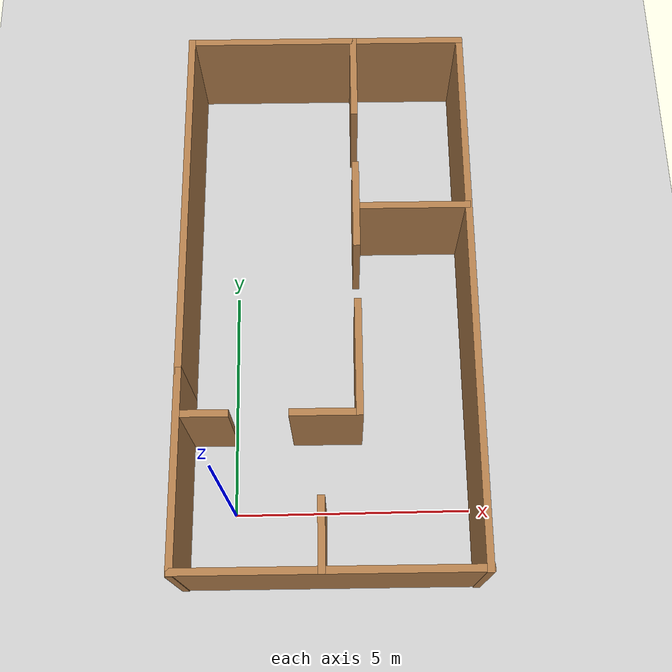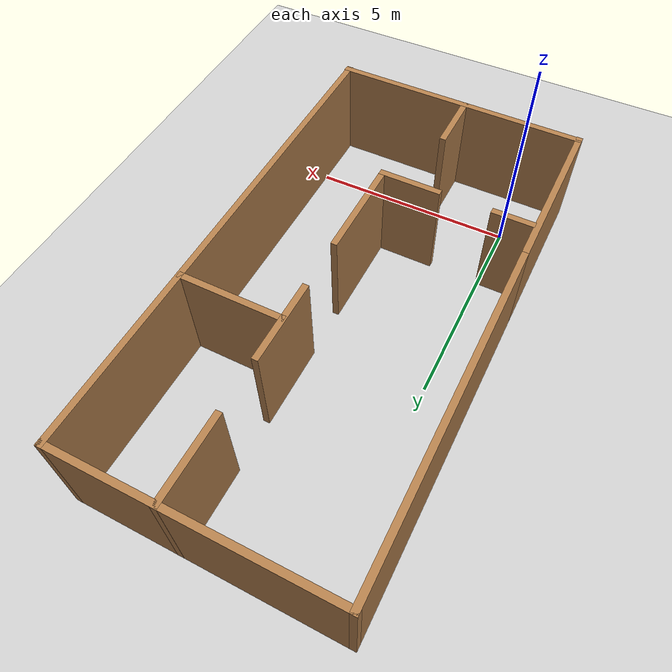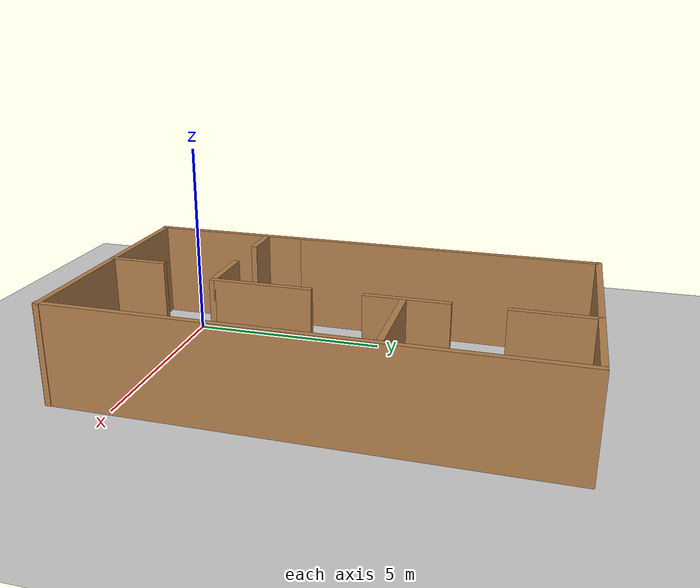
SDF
<sdf version="1.6">
 <world name="default">
  <light name="sun" type="directional">
   <pose>0 0 10 0 -0 0</pose>
   <diffuse>0.8 0.8 0.8 1</diffuse>
   <specular>0.2 0.2 0.2 1</specular>
   <attenuation>
    <range>1000</range>
    <constant>0.9</constant>
    <linear>0.01</linear>
    <quadratic>0.001</quadratic>
   </attenuation>
   <direction>-0.5 0.1 -0.9</direction>
  </light>
  <model name="ground_plane">
   <static>1</static>
   <link name="link">
    <collision name="collision">
     <geometry><plane><normal>0 0 1</normal><size>100 100</size></plane></geometry>
     <surface><friction><ode><mu>100</mu><mu2>50</mu2></ode></friction></surface>
    </collision>
    <visual name="visual">
     <cast_shadows>0</cast_shadows>
     <geometry><plane><normal>0 0 1</normal><size>100 100</size></plane></geometry>
     <material>
      <script><uri>file://media/materials/scripts/gazebo.material</uri><name>Gazebo/Grey</name></script>
     </material>
    </visual>
   </link>
  </model>
  <gravity>0 0 -9.8</gravity>
  <magnetic_field>6e-06 2.3e-05 -4.2e-05</magnetic_field>
  <atmosphere type="adiabatic"/>
  <physics name="default_physics" default="0" type="ode">
   <max_step_size>0.001</max_step_size>
   <real_time_factor>1</real_time_factor>
   <real_time_update_rate>1000</real_time_update_rate>
  </physics>
  <scene><ambient>0.4 0.4 0.4 1</ambient><background>0.7 0.7 0.7 1</background><shadows>1</shadows></scene>
  <audio><device>default</device></audio>
  <spherical_coordinates>
   <surface_model>EARTH_WGS84</surface_model>
   <latitude_deg>0</latitude_deg>
   <longitude_deg>0</longitude_deg>
   <elevation>0</elevation>
   <heading_deg>0</heading_deg>
  </spherical_coordinates>
  <model name="CASA_lab">
   <pose>2.07983 4.42493 0 0 0 -1.58</pose>
   <link name="Wall_0">
    <collision name="Wall_0_Collision">
     <geometry><box><size>8 0.15 2.5</size></box></geometry>
     <pose>0 0 1.25 0 -0 0</pose>
    </collision>
    <visual name="Wall_0_Visual">
     <pose>0 0 1.25 0 -0 0</pose>
     <geometry><box><size>8 0.15 2.5</size></box></geometry>
     <material>
      <script><uri>file://media/materials/scripts/gazebo.material</uri><name>Gazebo/Wood</name></script>
      <ambient>1 1 1 1</ambient>
     </material>
     <meta><layer>0</layer></meta>
    </visual>
    <pose>-1.99791 -3.05756 0 0 -0 0</pose>
   </link>
   <link name="Wall_12">
    <collision name="Wall_12_Collision">
     <geometry><box><size>2 0.15 2.5</size></box></geometry>
     <pose>0 0 1.25 0 -0 0</pose>
    </collision>
    <visual name="Wall_12_Visual">
     <pose>0 0 1.25 0 -0 0</pose>
     <geometry><box><size>2 0.15 2.5</size></box></geometry>
     <material>
      <script><uri>file://media/materials/scripts/gazebo.material</uri><name>Gazebo/Wood</name></script>
      <ambient>1 1 1 1</ambient>
     </material>
     <meta><layer>0</layer></meta>
    </visual>
    <pose>-1.79926 0.618124 0 0 -0 0</pose>
   </link>
   <link name="Wall_14">
    <collision name="Wall_14_Collision">
     <geometry><box><size>2.5 0.15 2.5</size></box></geometry>
     <pose>0 0 1.25 0 -0 0</pose>
    </collision>
    <visual name="Wall_14_Visual">
     <pose>0 0 1.25 0 -0 0</pose>
     <geometry><box><size>2.5 0.15 2.5</size></box></geometry>
     <material>
      <script><uri>file://media/materials/scripts/gazebo.material</uri><name>Gazebo/Wood</name></script>
      <ambient>1 1 1 1</ambient>
     </material>
     <meta><layer>0</layer></meta>
    </visual>
    <pose>1.65074 0.618124 0 0 -0 0</pose>
   </link>
   <link name="Wall_15">
    <collision name="Wall_15_Collision">
     <geometry><box><size>1.5 0.15 2.5</size></box></geometry>
     <pose>0 0 1.25 0 -0 0</pose>
    </collision>
    <visual name="Wall_15_Visual">
     <pose>0 0 1.25 0 -0 0</pose>
     <geometry><box><size>1.5 0.15 2.5</size></box></geometry>
     <material>
      <script><uri>file://media/materials/scripts/gazebo.material</uri><name>Gazebo/Wood</name></script>
      <ambient>1 1 1 1</ambient>
     </material>
     <meta><layer>0</layer></meta>
    </visual>
    <pose>2.82574 -0.056876 0 0 -0 -1.5708</pose>
   </link>
   <link name="Wall_17">
    <collision name="Wall_17_Collision">
     <geometry><box><size>1 0.15 2.5</size></box></geometry>
     <pose>0 0 1.25 0 -0 0</pose>
    </collision>
    <visual name="Wall_17_Visual">
     <pose>0 0 1.25 0 -0 0</pose>
     <geometry><box><size>1 0.15 2.5</size></box></geometry>
     <material>
      <script><uri>file://media/materials/scripts/gazebo.material</uri><name>Gazebo/Wood</name></script>
      <ambient>1 1 1 1</ambient>
     </material>
     <meta><layer>0</layer></meta>
    </visual>
    <pose>2.82574 -2.50688 0 0 -0 -1.5708</pose>
   </link>
   <link name="Wall_19">
    <collision name="Wall_19_Collision">
     <geometry><box><size>2.5 0.15 2.5</size></box></geometry>
     <pose>0 0 1.25 0 -0 0</pose>
    </collision>
    <visual name="Wall_19_Visual">
     <pose>0 0 1.25 0 -0 0</pose>
     <geometry><box><size>2.5 0.15 2.5</size></box></geometry>
     <material>
      <script><uri>file://media/materials/scripts/gazebo.material</uri><name>Gazebo/Wood</name></script>
      <ambient>1 1 1 1</ambient>
     </material>
     <meta><layer>0</layer></meta>
    </visual>
    <pose>-1.73522 1.83063 0 0 -0 1.5708</pose>
   </link>
   <link name="Wall_21">
    <collision name="Wall_21_Collision">
     <geometry><box><size>1.5 0.15 2.5</size></box></geometry>
     <pose>0 0 1.25 0 -0 0</pose>
    </collision>
    <visual name="Wall_21_Visual">
     <pose>0 0 1.25 0 -0 0</pose>
     <geometry><box><size>1.5 0.15 2.5</size></box></geometry>
     <material>
      <script><uri>file://media/materials/scripts/gazebo.material</uri><name>Gazebo/Wood</name></script>
      <ambient>1 1 1 1</ambient>
     </material>
     <meta><layer>0</layer></meta>
    </visual>
    <pose>5.23091 -0.164528 0 0 -0 3.14159</pose>
   </link>
   <link name="Wall_4">
    <collision name="Wall_4_Collision">
     <geometry><box><size>6.25 0.15 2.5</size></box></geometry>
     <pose>0 0 1.25 0 -0 0</pose>
    </collision>
    <visual name="Wall_4_Visual">
     <pose>0 0 1.25 0 -0 0</pose>
     <geometry><box><size>6.25 0.15 2.5</size></box></geometry>
     <material>
      <script><uri>file://media/materials/scripts/gazebo.material</uri><name>Gazebo/Wood</name></script>
      <ambient>1 1 1 1</ambient>
     </material>
     <meta><layer>0</layer></meta>
    </visual>
    <pose>-5.92291 -0.007562 0 0 -0 1.5708</pose>
   </link>
   <link name="Wall_5">
    <collision name="Wall_5_Collision">
     <geometry><box><size>11.9972 0.15 2.5</size></box></geometry>
     <pose>0 0 1.25 0 -0 0</pose>
    </collision>
    <visual name="Wall_5_Visual">
     <pose>0 0 1.25 0 -0 0</pose>
     <geometry><box><size>11.9972 0.15 2.5</size></box></geometry>
     <material>
      <script><uri>file://media/materials/scripts/gazebo.material</uri><name>Gazebo/Wood</name></script>
      <ambient>1 1 1 1</ambient>
     </material>
     <meta><layer>0</layer></meta>
    </visual>
    <pose>0.000676 3.04244 0 0 -0 0</pose>
   </link>
   <link name="Wall_6">
    <collision name="Wall_6_Collision">
     <geometry><box><size>6.25 0.15 2.5</size></box></geometry>
     <pose>0 0 1.25 0 -0 0</pose>
    </collision>
    <visual name="Wall_6_Visual">
     <pose>0 0 1.25 0 -0 0</pose>
     <geometry><box><size>6.25 0.15 2.5</size></box></geometry>
     <material>
      <script><uri>file://media/materials/scripts/gazebo.material</uri><name>Gazebo/Wood</name></script>
      <ambient>1 1 1 1</ambient>
     </material>
     <meta><layer>0</layer></meta>
    </visual>
    <pose>5.90914 0.007561 0 0 -0 -1.5708</pose>
   </link>
   <link name="Wall_7">
    <collision name="Wall_7_Collision">
     <geometry><box><size>4.14716 0.15 2.5</size></box></geometry>
     <pose>0 0 1.25 0 -0 0</pose>
    </collision>
    <visual name="Wall_7_Visual">
     <pose>0 0 1.25 0 -0 0</pose>
     <geometry><box><size>4.14716 0.15 2.5</size></box></geometry>
     <material>
      <script><uri>file://media/materials/scripts/gazebo.material</uri><name>Gazebo/Wood</name></script>
      <ambient>1 1 1 1</ambient>
     </material>
     <meta><layer>0</layer></meta>
    </visual>
    <pose>3.92568 -3.05756 0 0 -0 3.14159</pose>
   </link>
   <link name="Wall_9">
    <collision name="Wall_9_Collision">
     <geometry><box><size>2 0.15 2.5</size></box></geometry>
     <pose>0 0 1.25 0 -0 0</pose>
    </collision>
    <visual name="Wall_9_Visual">
     <pose>0 0 1.25 0 -0 0</pose>
     <geometry><box><size>2 0.15 2.5</size></box></geometry>
     <material>
      <script><uri>file://media/materials/scripts/gazebo.material</uri><name>Gazebo/Wood</name></script>
      <ambient>1 1 1 1</ambient>
     </material>
     <meta><layer>0</layer></meta>
    </visual>
    <pose>-4.99926 0.618124 0 0 -0 0</pose>
   </link>
   <static>1</static>
  </model>
 </world>
</sdf>
